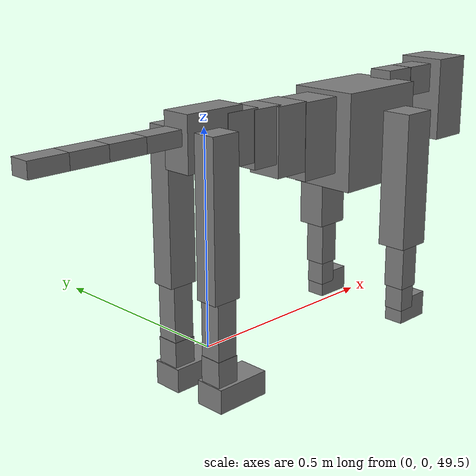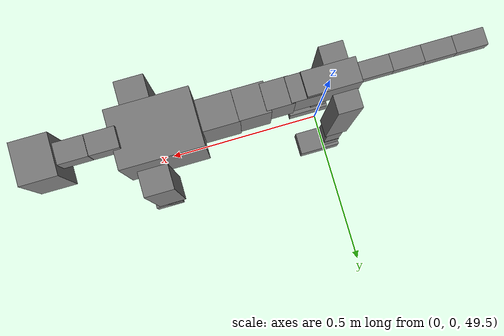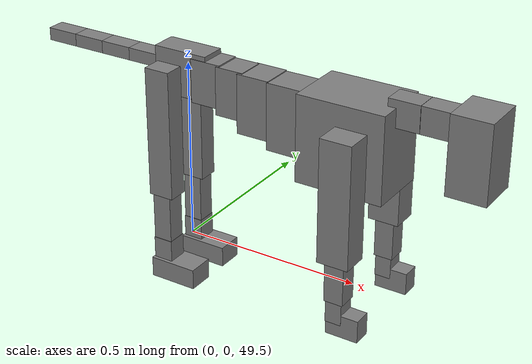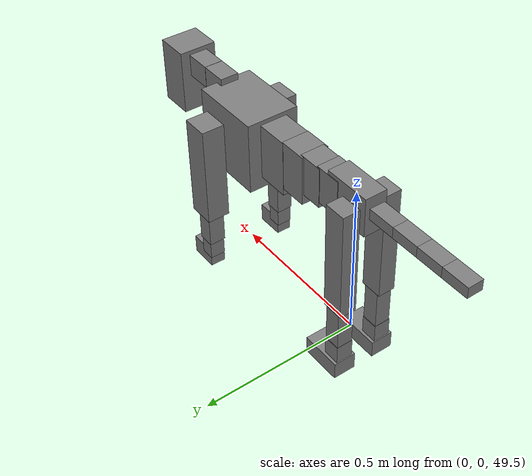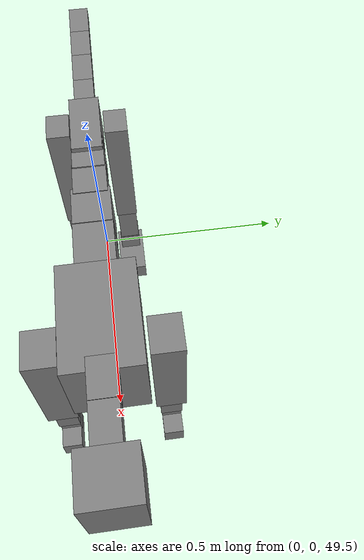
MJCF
<mujoco model="dog">

    <default>
        <joint armature="0.02" stiffness="1" damping="0.2" limited="true"/>
        <geom condim="3" friction="1 0.05 0.05" margin="0.01"/>
        <motor ctrllimited="true" ctrlrange="-1.0 1.0" forcelimited="true" gear="50"/>
    </default>

    <compiler inertiafromgeom="true" angle="radian"/>

    <option timestep="0.016" iterations="50" tolerance="1e-10" solver="Newton" jacobian="dense" cone="pyramidal"/>

    <size nconmax="20000" njmax="60000" nstack="5000000"/>
    <visual>
        <map force="0.1" zfar="30"/>
        <rgba haze="0.15 0.25 0.35 1"/>
        <quality shadowsize="2048"/>
        <global offwidth="800" offheight="800"/>
    </visual>

    <asset>
        <texture type="skybox" builtin="gradient" rgb1="0.3 0.5 0.7" rgb2="0 0 0" width="512" height="512"/>
        <texture name="texplane" type="2d" builtin="checker" rgb1=".2 .3 .4" rgb2=".1 0.15 0.2" width="512" height="512"
                 mark="cross" markrgb=".8 .8 .8"/>
        <texture name="texgeom" type="cube" builtin="flat" mark="cross" width="127" height="1278" rgb1="0.8 0.6 0.4"
                 rgb2="0.8 0.6 0.4" markrgb="1 1 1" random="0.01"/>

        <material name="matplane" reflectance="0.3" texture="texplane" texrepeat="1 1" texuniform="true"/>
        <material name="matgeom" texture="texgeom" texuniform="true" rgba="0.8 0.6 .4 1"/>
    </asset>

    <worldbody>
        <geom name="floor" pos="0 0 0" size="0 0 .25" type="plane" material="matplane" condim="3"/>

        <light directional="false" diffuse=".2 .2 .2" specular="0 0 0" pos="0 0 5" dir="0 0 -1" castshadow="false"/>
        <light mode="targetbodycom" target="torso" directional="false" diffuse=".8 .8 .8" specular="0.3 0.3 0.3"
               pos="0 0 4.0" dir="0 0 -1"/>

        <body name="root" pos="0 0 50">
            <freejoint name="root_1"/>
            <geom type="box" pos="0 0 -0.02" size="0.0774  0.0358  0.063" density="2030"/>

            <body name="spine1" pos="0.054 0 0">
                <joint name="spine1_y" axis="0 1 0" range="0 0.7" limited="true"/>
                <geom type="box" pos="0.02375 0 -0.03" size="0.04375  0.0375  0.05985" density="2030"/>

                <body name="spine2" pos="0.0612 0 0">
                    <joint name="spine2_y" axis="0 1 0" range="-0.15 0.15" limited="true"/>
                    <geom type="box" pos="0.03555  0  -0.04" size="0.04055  0.039  0.06615" density="2030"/>

                    <body name="spine3" pos="0.0730 0 0">
                        <joint name="spine3_y" axis="0 1 0" range="-0.15 0.15" limited="true"/>
                        <geom type="box" pos="0.03555  0  -0.057" size="0.04555  0.0445  0.081" density="2030"/>

                        <body name="spine4" pos="0.0780 0 0">
                            <joint name="spine4_y" axis="0 1 0" range="-0.15 0.15" limited="true"/>
                            <geom type="box" pos="0.05265  0  -0.07" size="0.05265  0.045  0.09135" density="2030"/>

                            <body name="torso" pos="0.1082 0 0">
                                <joint name="torso_y" axis="0 1 0" range="-0.15 0.15" limited="true"/>
                                <geom type="box" pos="0.11925  0  -0.085" size="0.11925  0.085  0.11745"
                                      density="2030"/>

                                <body name="neck1" pos="0.2160  0   0.0180">
                                    <joint name="neck1_y" axis="0 1 0" range="-1.2  -1" limited="true"/>
                                    <geom type="box" pos="0.0423  0  0" size="0.0423  0.03  0.036" density="2325"/>

                                    <body name="neck2" pos="0.0853  0  0">
                                        <joint name="neck2_y" axis="0 1 0" range="0.1  0" limited="true"/>
                                        <geom type="box" pos="0.0423  0  0" size="0.0423  0.03  0.036" density="2325"/>

                                        <body name="head" pos="0.0853  0  0">
                                            <joint name="head_y" axis="0 1 0" range="-0.3  -0.2" limited="true"/>
                                            <geom type="box" pos="0.0531  0  -0.055" size="0.0531  0.06  0.1044"
                                                  density="4030"/>

                                        </body>
                                    </body>
                                </body>

                                <body name="front_shoulder" pos="0.156  0   -0.0480">
                                    <joint name="front_shoulder_y" axis="0 1 0" range="-1 1.5" limited="true"/>
                                    <geom type="box" pos="0 0.13 -0.1394" size="0.0429  0.0367  0.1661" density="1158"/>
                                    <geom type="box" pos="0 -0.13 -0.1394" size="0.0429  0.0367  0.1661"
                                          density="1158"/>

                                    <body name="front_elbow" pos="0  0  -0.2788">
                                        <joint name="front_elbow_y" axis="0 1 0" range="-2 0" limited="true"/>
                                        <geom type="box" pos="0 0.13 -0.0680" size="0.0261  0.0267  0.0680"
                                              density="1081"/>
                                        <geom type="box" pos="0 -0.13 -0.0680" size="0.0261  0.0267  0.0680"
                                              density="1081"/>

                                        <body name="front_wrist" pos="0  0  -0.1361">
                                            <joint name="front_wrist_y" axis="0 1 0" range="-0.2 0" limited="true"/>
                                            <geom type="box" pos="0 0.13 -0.0229" size="0.0222  0.0246  0.0360"
                                                  density="1664"/>
                                            <geom type="box" pos="0 -0.13 -0.0229" size="0.0222  0.0246  0.0360"
                                                  density="1664"/>

                                            <body name="front_finger_end" pos="0  0  -0.0457">
                                                <joint name="front_finger_y" axis="0 1 0" range="-0.4 1"
                                                       limited="true"/>
                                                <geom type="box" pos="0.0245  0.13  -0.0158"
                                                      size="0.0450  0.0245  0.0308" density="1515"/>
                                                <geom type="box" pos="0.0245  -0.13  -0.0158"
                                                      size="0.0450  0.0245  0.0308" density="1515"/>

                                            </body>

                                        </body>
                                    </body>
                                </body>

                            </body>
                        </body>
                    </body>
                </body>
            </body>

            <body name="back_hip" pos="-0.03 0 -0.018">
                <joint name="back_hip_y" axis="0 1 0" range="-1.5 0.3" limited="true"/>
                <geom type="box" pos="0 0.07 -0.1577" size="0.0355  0.0279  0.1805" density="1154"/>
                <geom type="box" pos="0 -0.07 -0.1577" size="0.0355  0.0279  0.1805" density="1154"/>

                <body name="back_knee" pos="0  0  -0.3155">
                    <joint name="back_knee_y" axis="0 1 0" range="0 2.8" limited="true"/>
                    <geom type="box" pos="0 0.07 -0.0823" size="0.0262  0.0258  0.0978" density="1227"/>
                    <geom type="box" pos="0 -0.07 -0.0823" size="0.0262  0.0258  0.0978" density="1227"/>

                    <body name="back_ankle" pos="0  0  -0.1645">
                        <joint name="back_ankle_y" axis="0 1 0" range="-2.2 0" limited="true"/>
                        <geom type="box" pos="0 0.07 -0.0322" size="0.0272  0.0272  0.0434" density="1284"/>
                        <geom type="box" pos="0 -0.07 -0.0322" size="0.0272  0.0272  0.0434" density="1284"/>

                        <body name="back_toe_end" pos="0  0  -0.0643">
                            <joint name="back_toe_y" axis="0 1 0" range="-0.4 1" limited="true"/>
                            <geom type="box" pos="0.0366  0.07  -0.0133" size="0.0671  0.0366  0.0283" density="1515"/>
                            <geom type="box" pos="0.0366  -0.07  -0.0133" size="0.0671  0.0366  0.0283" density="1515"/>

                        </body>
                    </body>
                </body>
            </body>

            <body name="tail1" pos="-0.074 0 -0.006">
                <joint name="tail1_y" axis="0 1 0" range="-0.2 0.2" limited="true"/>
                <geom type="box" pos="-0.0536  0  0" size="0.045  0.025  0.0175" density="1587"/>

                <body name="tail2" pos="-0.09 0 0">
                    <joint name="tail2_y" axis="0 1 0" range="-0.2 0.2" limited="true"/>
                    <geom type="box" pos="-0.0536  0  0" size="0.045  0.025  0.0175" density="1587"/>

                    <body name="tail3" pos="-0.09 0 0">
                        <joint name="tail3_y" axis="0 1 0" range="-0.2 0.2" limited="true"/>
                        <geom type="box" pos="-0.0536  0  0" size="0.045  0.025  0.0175" density="1587"/>

                        <body name="tail4" pos="-0.09 0 0">
                            <joint name="tail4_y" axis="0 1 0" range="-0.2 0.2" limited="true"/>
                            <geom type="box" pos="-0.0536  0  0" size="0.045  0.025  0.0175" density="1587"/>

                        </body>
                    </body>
                </body>
            </body>
        </body>
    </worldbody>

    <actuator>
        <motor joint="spine1_y" forcerange="-150 150     "/>
        <motor joint="spine2_y" forcerange="-150 150     "/>
        <motor joint="spine3_y" forcerange="-150 150     "/>
        <motor joint="spine4_y" forcerange="-150 150     "/>
        <motor joint="torso_y" forcerange="-150 150     "/>
        <motor joint="neck1_y" forcerange="-100 100       "/>
        <motor joint="neck2_y" forcerange="-100 100       "/>
        <motor joint="head_y" forcerange="-150 150       "/>
        <motor joint="front_shoulder_y" forcerange="-148.07 196.37"/>
        <motor joint="front_elbow_y" forcerange="-152.01 142.20"/>
        <motor joint="front_wrist_y" forcerange="-106.84 90.11"/>
        <motor joint="front_finger_y" forcerange="-68.40 22.40"/>
        <motor joint="back_hip_y" forcerange="-200.33 371.29"/>
        <motor joint="back_knee_y" forcerange="-212.07 363.30"/>
        <motor joint="back_angle_y" forcerange="-191.53 144.20"/>
        <motor joint="back_toe_y" forcerange="-136.46 76.45"/>
        <motor joint="tail1_y" forcerange="-50 50     "/>
        <motor joint="tail2_y" forcerange="-50 50     "/>
        <motor joint="tail3_y" forcerange="-50 50     "/>
        <motor joint="tail4_y" forcerange="-50 50     "/>
    </actuator>
</mujoco>
